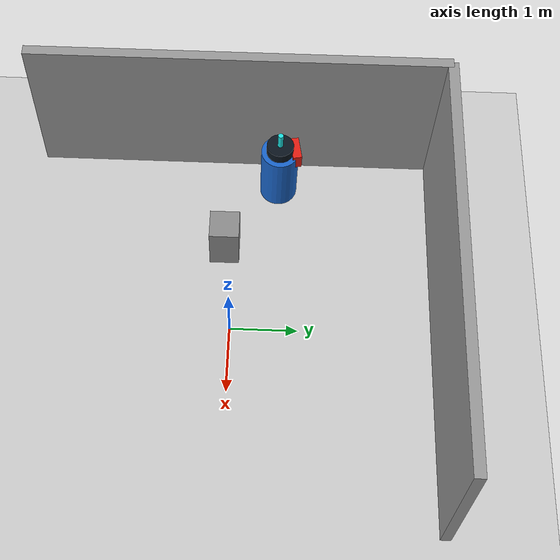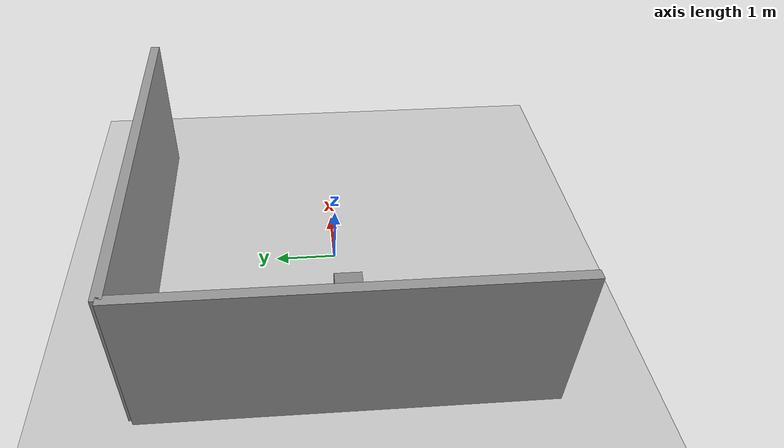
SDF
<sdf version="1.7">
 <world name="default">
  <plugin name="socnav_plugin" filename="libSocNavPlugin.so">
   <robot_name>robot</robot_name>
   <trajectory_file>/home/hunav_gz_classic_ws/SocNav3_trajectories/src6/000003919.json</trajectory_file>
   <human_slots>0</human_slots>
   <goal_angle_mesh>
    <angle_threshold>1.07623127645</angle_threshold>
    <uri>/home/hunav_gz_classic_ws/src/socnav_gazebo_reproducer/meshes/000003919_goal_angle_00.stl</uri>
   </goal_angle_mesh>
  </plugin>
  <light name="sun" type="directional">
   <pose>0 0 10 0 -0 0</pose>
   <diffuse>0.8 0.8 0.8 1</diffuse>
   <specular>0.2 0.2 0.2 1</specular>
   <attenuation>
    <range>1000</range>
    <constant>0.9</constant>
    <linear>0.01</linear>
    <quadratic>0.001</quadratic>
   </attenuation>
   <direction>-0.5 0.1 -0.9</direction>
   <spot><inner_angle>0</inner_angle><outer_angle>0</outer_angle><falloff>0</falloff></spot>
  </light>
  <model name="ground_plane">
   <static>1</static>
   <link name="link">
    <collision name="collision">
     <geometry><plane><normal>0 0 1</normal><size>100 100</size></plane></geometry>
     <surface><friction><ode><mu>100</mu><mu2>50</mu2></ode></friction></surface>
    </collision>
    <visual name="visual">
     <cast_shadows>0</cast_shadows>
     <geometry><plane><normal>0 0 1</normal><size>100 100</size></plane></geometry>
     <material>
      <script><uri>file://media/materials/scripts/kitchen.material</uri><name>Kitchen/CounterTop_H</name></script>
     </material>
    </visual>
   </link>
  </model>
  <gravity>0 0 -9.8</gravity>
  <magnetic_field>6e-06 2.3e-05 -4.2e-05</magnetic_field>
  <atmosphere type="adiabatic"/>
  <physics type="ode">
   <max_step_size>0.001</max_step_size>
   <real_time_factor>1</real_time_factor>
   <real_time_update_rate>1000</real_time_update_rate>
  </physics>
  <scene><ambient>0.4 0.4 0.4 1</ambient><background>0.7 0.7 0.7 1</background><shadows>1</shadows></scene>
  <audio><device>default</device></audio>
  <spherical_coordinates>
   <surface_model>EARTH_WGS84</surface_model>
   <latitude_deg>0</latitude_deg>
   <longitude_deg>0</longitude_deg>
   <elevation>0</elevation>
   <heading_deg>0</heading_deg>
  </spherical_coordinates>
  <model name="robot">
   <pose>-2.4871320295177886 0.6594843489582982 0.5 0 0 1.7336515951368967</pose>
   <link name="link">
    <collision name="collision">
     <geometry><cylinder><radius>0.28000927855825913</radius><length>1.0</length></cylinder></geometry>
    </collision>
    <visual name="visual">
     <geometry><cylinder><radius>0.28000927855825913</radius><length>1.0</length></cylinder></geometry>
     <material><ambient>0.1 0.4 0.8 1</ambient><diffuse>0.1 0.4 0.8 1</diffuse></material>
    </visual>
    <visual name="robot_top">
     <pose>0 0 0.58 0 0 0</pose>
     <geometry><cylinder><radius>0.20160668056194656</radius><length>0.16</length></cylinder></geometry>
     <material><ambient>0.04 0.08 0.12 1</ambient><diffuse>0.04 0.08 0.12 1</diffuse></material>
    </visual>
    <visual name="robot_front">
     <pose>0.23520779398893765 0 0.44 0 0 0</pose>
     <geometry><box><size>0.1344044537079644 0.3584118765545717 0.24</size></box></geometry>
     <material><ambient>0.9 0.12 0.08 1</ambient><diffuse>0.9 0.12 0.08 1</diffuse></material>
    </visual>
    <visual name="robot_sensor">
     <pose>0 0 0.78 0 0 0</pose>
     <geometry><cylinder><radius>0.03920129899815628</radius><length>0.24</length></cylinder></geometry>
     <material><ambient>0.1 0.9 0.9 1</ambient><diffuse>0.1 0.9 0.9 1</diffuse></material>
    </visual>
   </link>
  </model>
  <model name="static_object_1">
   <static>true</static>
   <pose>-1.3398317919006464 -0.1240468994944095 0.375 0 0 0</pose>
   <link name="link">
    <collision name="collision">
     <geometry><box><size>0.43837307837645995 0.43837307837645995 0.75</size></box></geometry>
    </collision>
    <visual name="visual">
     <geometry><box><size>0.43837307837645995 0.43837307837645995 0.75</size></box></geometry>
     <material><ambient>0.55 0.55 0.55 1</ambient><diffuse>0.55 0.55 0.55 1</diffuse></material>
    </visual>
   </link>
  </model>
  <model name="simple_world_test">
   <link name="Wall_0">
    <collision name="Wall_0_Collision">
     <geometry><box><size>6.074238274646794 0.15 2.5</size></box></geometry>
     <pose>0 0 1.25 0 -0 0</pose>
    </collision>
    <visual name="Wall_0_Visual">
     <pose>0 0 1.25 0 -0 0</pose>
     <geometry><box><size>6.074238274646794 0.15 2.5</size></box></geometry>
     <material>
      <script><uri>file://media/materials/scripts/gazebo.material</uri><name>Gazebo/Grey</name></script>
      <ambient>1 1 1 1</ambient>
     </material>
     <meta><layer>0</layer></meta>
    </visual>
    <pose>-3.027119137323397 0.0 0 0 -0 1.5707963267948966</pose>
   </link>
   <link name="Wall_1">
    <collision name="Wall_1_Collision">
     <geometry><box><size>6.074238274646794 0.15 2.5</size></box></geometry>
     <pose>0 0 1.25 0 -0 0</pose>
    </collision>
    <visual name="Wall_1_Visual">
     <pose>0 0 1.25 0 -0 0</pose>
     <geometry><box><size>6.074238274646794 0.15 2.5</size></box></geometry>
     <material>
      <script><uri>file://media/materials/scripts/gazebo.material</uri><name>Gazebo/Grey</name></script>
      <ambient>1 1 1 1</ambient>
     </material>
     <meta><layer>0</layer></meta>
    </visual>
    <pose>0.0 3.027119137323397 0 0 -0 0.0</pose>
   </link>
   <static>1</static>
  </model>
 </world>
</sdf>
